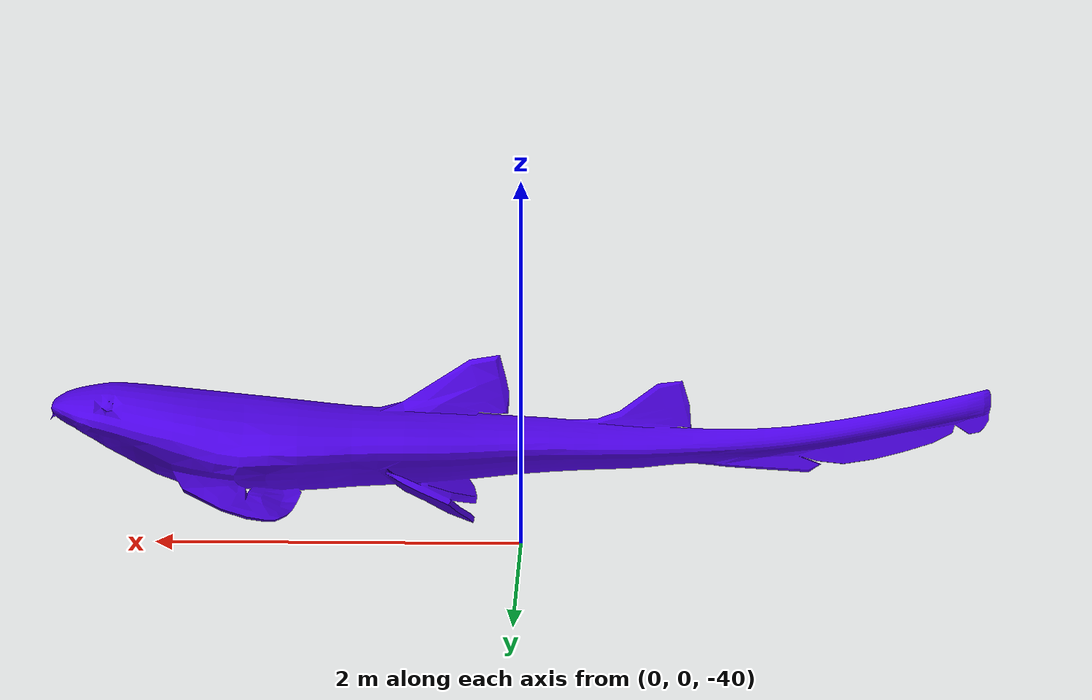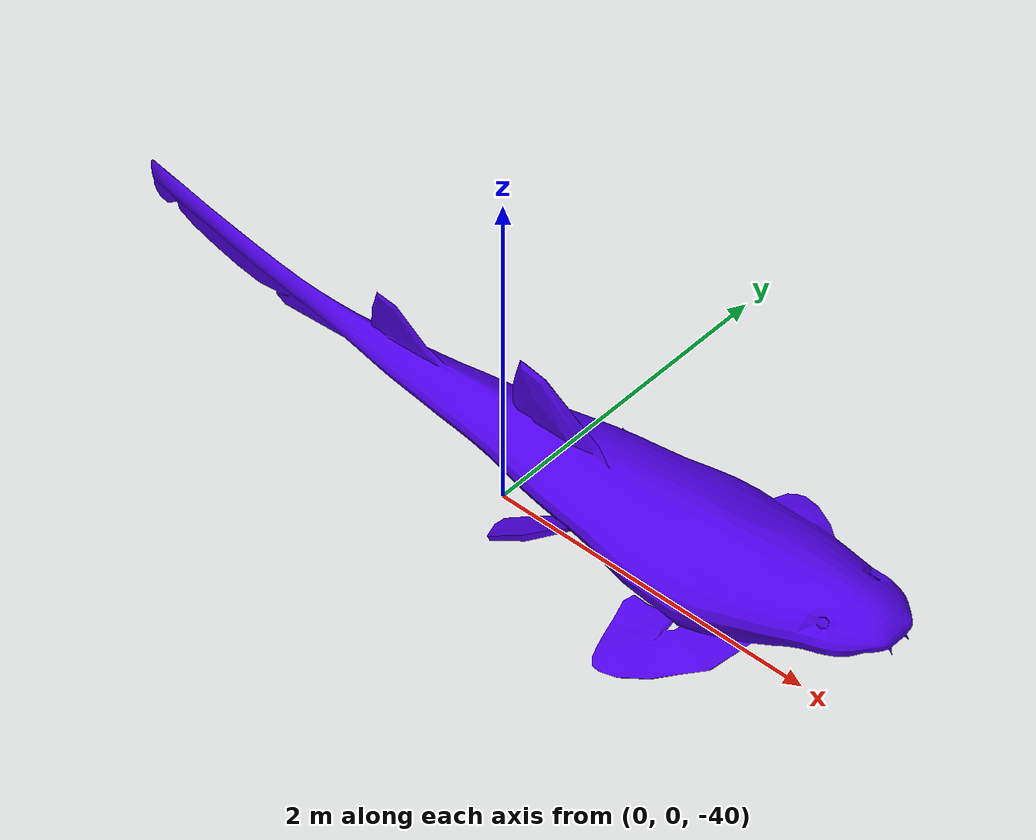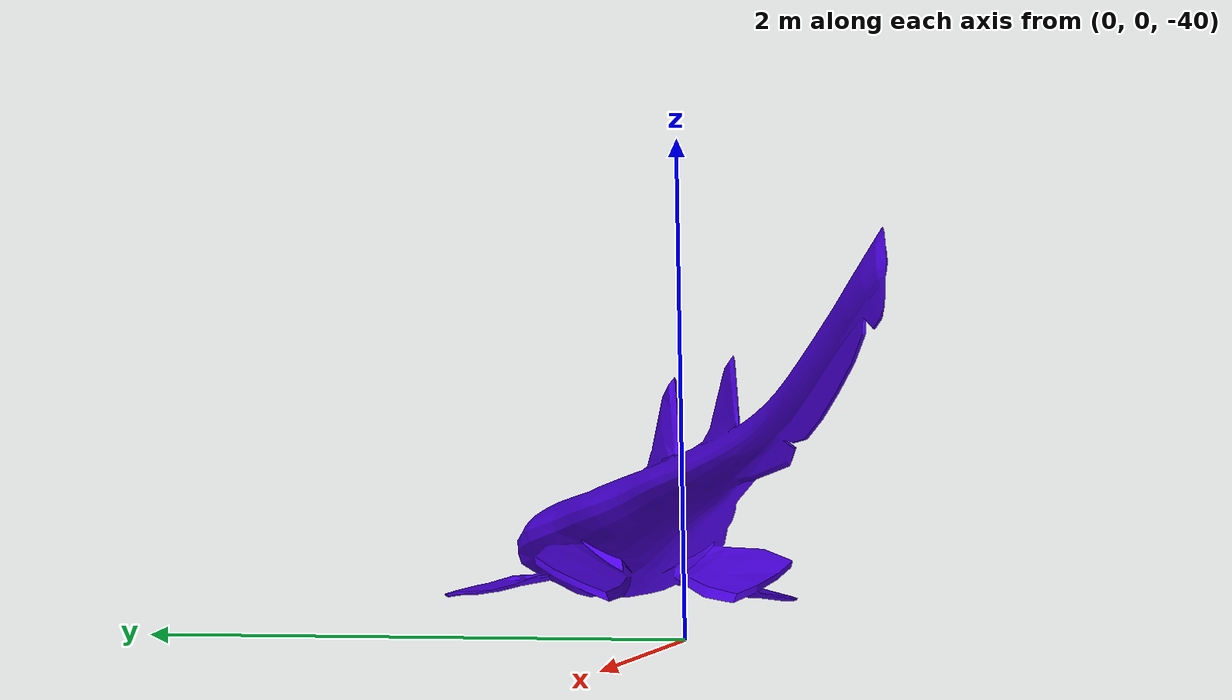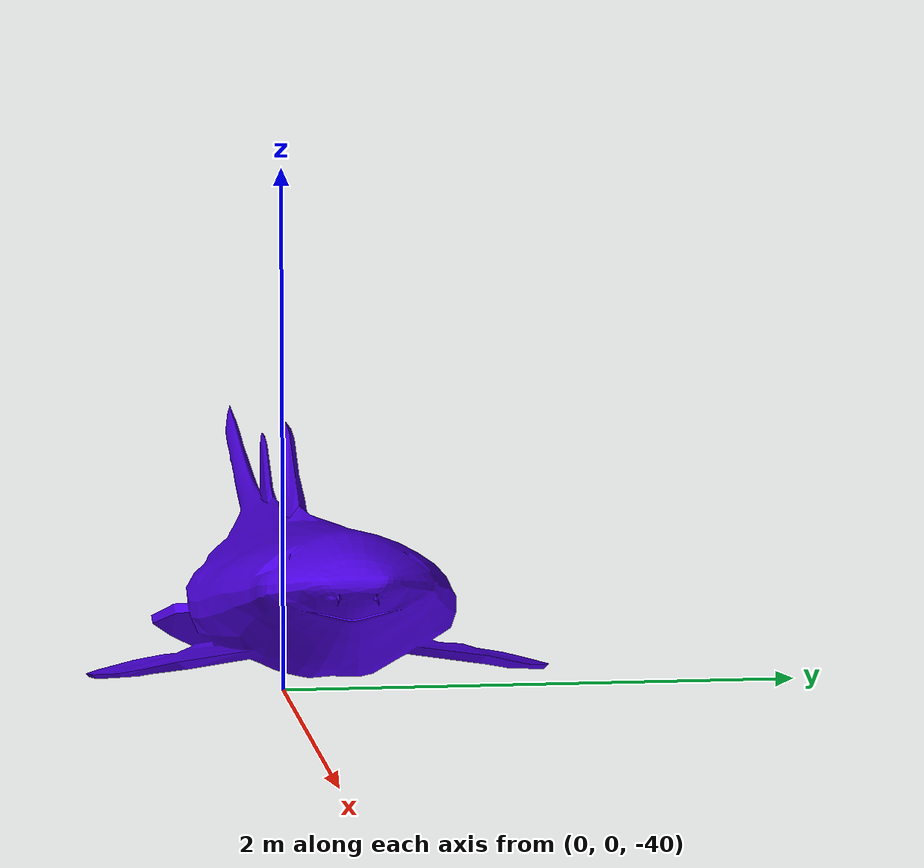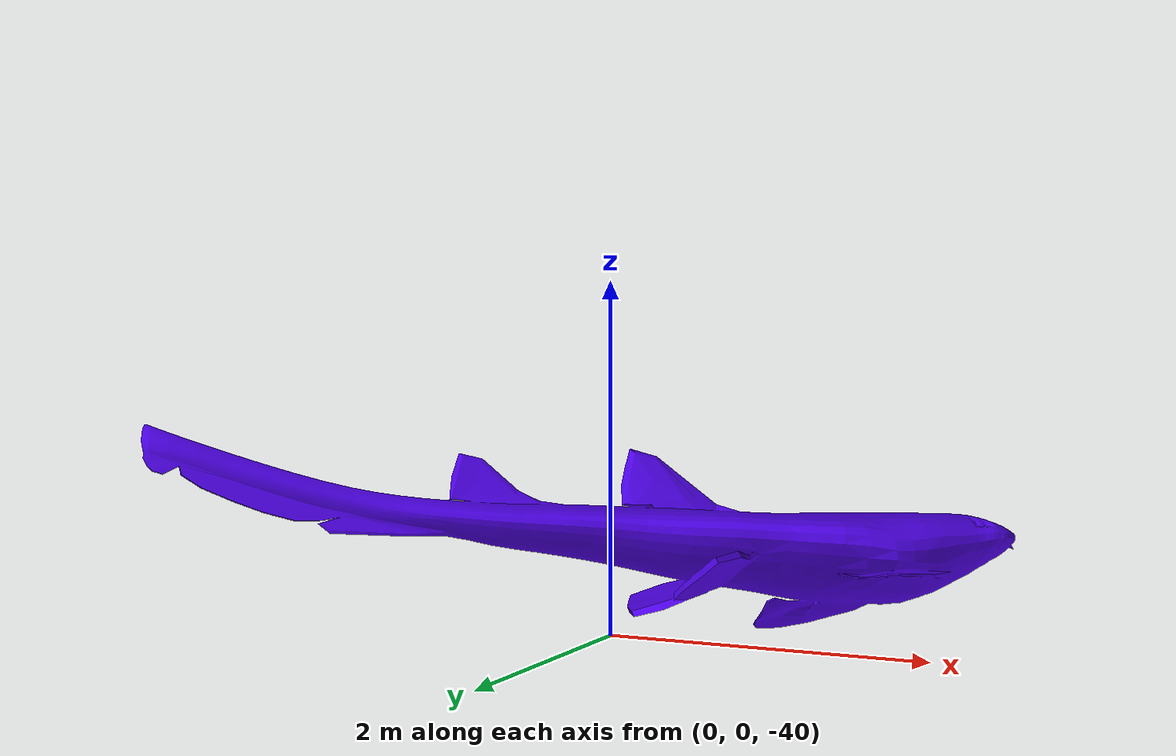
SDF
<?xml version="1.0" encoding="UTF-8"?>
<sdf version="1.6">
  <model name="catfishmodel">
    <pose>0 0 -40 0 0 0</pose>
    <static>true</static>

    <link name="catfishlink">
      <visual name="visual">
        <geometry>
          <mesh>
            <uri>model://catfish/meshes/catfish.stl</uri>
            <scale>0.01 0.01 0.01</scale>
          </mesh>
        </geometry>
        <material>
          <ambient>0.2 0 0.75 1</ambient>
          <diffuse>0.3 0 0.9 1</diffuse>
          <specular>0.3 0.3 0.3 64</specular>
          <emissive>0.2 0.2 0.2 1</emissive>
        </material>
      </visual>
      <collision name="collision">
        <geometry>
          <mesh>
            <uri>model://catfish/meshes/catfish.stl</uri>
            <scale>0.01 0.01 0.01</scale>
          </mesh>
        </geometry>
      </collision>
    </link>
  </model>
</sdf>
